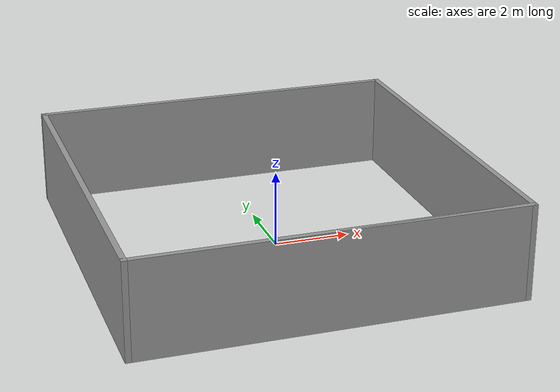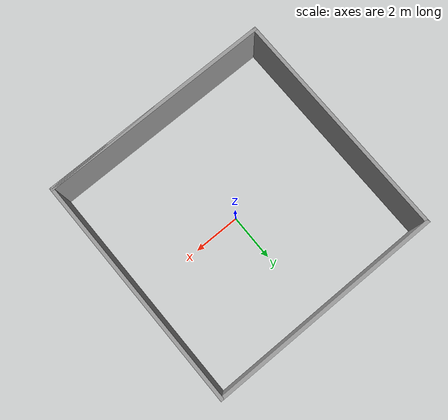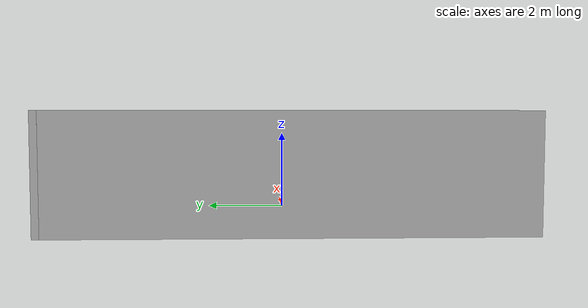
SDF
<?xml version='1.0'?>
<sdf version='1.7'>
  <model name='10x10'>
    <pose>-0.164685 0.011351 0 0 -0 0</pose>
    <link name='Wall_10'>
      <collision name='Wall_10_Collision'>
        <geometry>
          <box>
            <size>10 0.15 2.5</size>
          </box>
        </geometry>
        <pose>0 0 1.25 0 -0 0</pose>
      </collision>
      <visual name='Wall_10_Visual'>
        <pose>0 0 1.25 0 -0 0</pose>
        <geometry>
          <box>
            <size>10 0.15 2.5</size>
          </box>
        </geometry>
        <material>
          <script>
            <uri>file://media/materials/scripts/gazebo.material</uri>
            <name>Gazebo/Grey</name>
          </script>
          <ambient>1 1 1 1</ambient>
        </material>
        <meta>
          <layer>0</layer>
        </meta>
      </visual>
      <pose>-4.925 -0 0 0 -0 -1.5708</pose>
    </link>
    <link name='Wall_11'>
      <collision name='Wall_11_Collision'>
        <geometry>
          <box>
            <size>10 0.15 2.5</size>
          </box>
        </geometry>
        <pose>0 0 1.25 0 -0 0</pose>
      </collision>
      <visual name='Wall_11_Visual'>
        <pose>0 0 1.25 0 -0 0</pose>
        <geometry>
          <box>
            <size>10 0.15 2.5</size>
          </box>
        </geometry>
        <material>
          <script>
            <uri>file://media/materials/scripts/gazebo.material</uri>
            <name>Gazebo/Grey</name>
          </script>
          <ambient>1 1 1 1</ambient>
        </material>
        <meta>
          <layer>0</layer>
        </meta>
      </visual>
      <pose>0 -4.925 0 0 -0 0</pose>
    </link>
    <link name='Wall_6'>
      <collision name='Wall_6_Collision'>
        <geometry>
          <box>
            <size>5 0.15 2.5</size>
          </box>
        </geometry>
        <pose>0 0 1.25 0 -0 0</pose>
      </collision>
      <visual name='Wall_6_Visual'>
        <pose>0 0 1.25 0 -0 0</pose>
        <geometry>
          <box>
            <size>5 0.15 2.5</size>
          </box>
        </geometry>
        <material>
          <script>
            <uri>file://media/materials/scripts/gazebo.material</uri>
            <name>Gazebo/Grey</name>
          </script>
          <ambient>1 1 1 1</ambient>
        </material>
        <meta>
          <layer>0</layer>
        </meta>
      </visual>
      <pose>2.5 -4.925 0 0 -0 0</pose>
    </link>
    <link name='Wall_7'>
      <collision name='Wall_7_Collision'>
        <geometry>
          <box>
            <size>10 0.15 2.5</size>
          </box>
        </geometry>
        <pose>0 0 1.25 0 -0 0</pose>
      </collision>
      <visual name='Wall_7_Visual'>
        <pose>0 0 1.25 0 -0 0</pose>
        <geometry>
          <box>
            <size>10 0.15 2.5</size>
          </box>
        </geometry>
        <material>
          <script>
            <uri>file://media/materials/scripts/gazebo.material</uri>
            <name>Gazebo/Grey</name>
          </script>
          <ambient>1 1 1 1</ambient>
        </material>
        <meta>
          <layer>0</layer>
        </meta>
      </visual>
      <pose>4.925 -0 0 0 -0 1.5708</pose>
    </link>
    <link name='Wall_9'>
      <collision name='Wall_9_Collision'>
        <geometry>
          <box>
            <size>10 0.15 2.5</size>
          </box>
        </geometry>
        <pose>0 0 1.25 0 -0 0</pose>
      </collision>
      <visual name='Wall_9_Visual'>
        <pose>0 0 1.25 0 -0 0</pose>
        <geometry>
          <box>
            <size>10 0.15 2.5</size>
          </box>
        </geometry>
        <material>
          <script>
            <uri>file://media/materials/scripts/gazebo.material</uri>
            <name>Gazebo/Grey</name>
          </script>
          <ambient>1 1 1 1</ambient>
        </material>
        <meta>
          <layer>0</layer>
        </meta>
      </visual>
      <pose>0 4.925 0 0 -0 3.14159</pose>
    </link>
    <static>1</static>
  </model>
</sdf>
